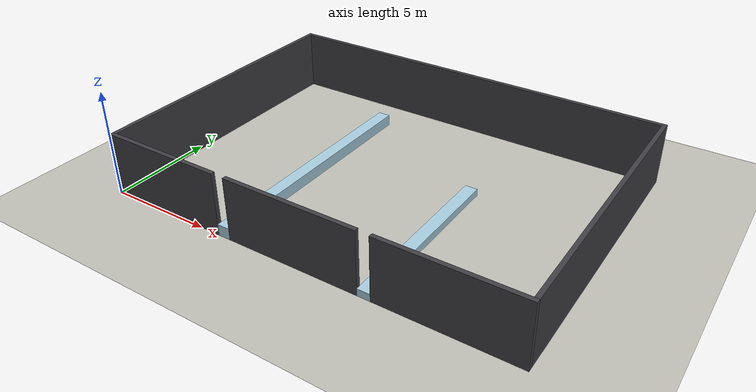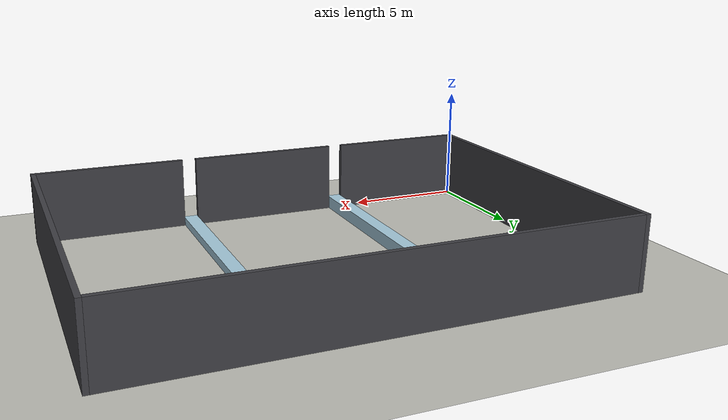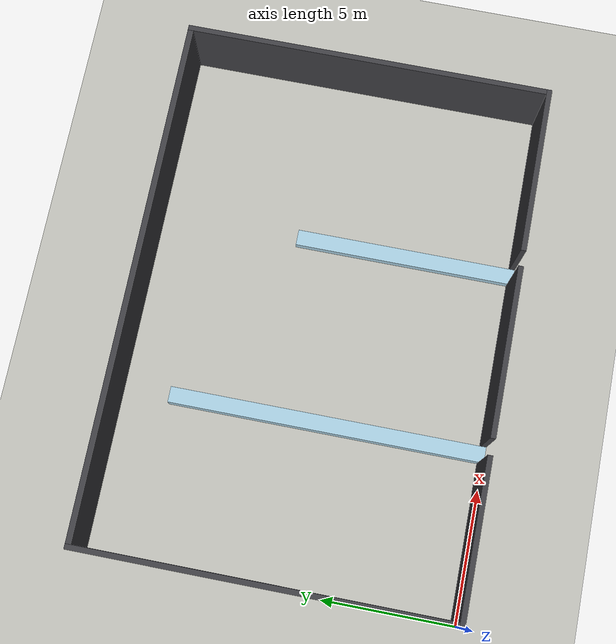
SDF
<?xml version="1.0" ?>
<!-- 자동 생성 파일 — 직접 수정하지 말 것.
     생성: python3 benchmark/export_sdf.py
     원본: benchmark/envs/heightmap.py 의 easy_open
     벽 2개(h=0.55/0.35), 우회 12m/8.4m — 넘기 vs 돌기 선택 -->
<sdf version="1.9">
  <world name="easy_open">

    <physics name="1ms" type="ignored">
      <max_step_size>0.001</max_step_size>
      <real_time_factor>1.0</real_time_factor>
    </physics>

    <plugin filename="gz-sim-physics-system" name="gz::sim::systems::Physics">
    </plugin>
    <plugin filename="gz-sim-user-commands-system" name="gz::sim::systems::UserCommands">
    </plugin>
    <plugin filename="gz-sim-scene-broadcaster-system" name="gz::sim::systems::SceneBroadcaster">
    </plugin>
    <plugin filename="gz-sim-contact-system" name="gz::sim::systems::Contact">
    </plugin>
    <plugin filename="gz-sim-imu-system" name="gz::sim::systems::Imu">
    </plugin>
    <plugin filename="gz-sim-sensors-system" name="gz::sim::systems::Sensors">
      <render_engine>ogre</render_engine>
    </plugin>

    <light type="directional" name="sun">
      <cast_shadows>true</cast_shadows>
      <pose>0 0 10 0 0 0</pose>
      <diffuse>0.8 0.8 0.8 1</diffuse>
      <specular>0.2 0.2 0.2 1</specular>
      <direction>-0.5 0.1 -0.9</direction>
    </light>

    <model name="ground_plane">
      <static>true</static>
      <link name="link">
        <collision name="collision">
          <geometry><plane>
            <normal>0 0 1</normal>
            <size>30.0 24.0</size>
          </plane></geometry>
        </collision>
        <visual name="visual">
          <geometry><plane>
            <normal>0 0 1</normal>
            <size>30.0 24.0</size>
          </plane></geometry>
          <material>
            <ambient>0.75 0.75 0.72 1</ambient>
            <diffuse>0.75 0.75 0.72 1</diffuse>
          </material>
        </visual>
      </link>
    </model>

    <model name="obs_0001_h035">
      <static>true</static>
      <pose>13.300 4.250 0.175 0 0 0</pose>
      <link name="link">
        <collision name="collision">
          <geometry><box><size>0.600 8.500 0.350</size></box></geometry>
        </collision>
        <visual name="visual">
          <geometry><box><size>0.600 8.500 0.350</size></box></geometry>
          <material>
            <ambient>0.66 0.81 0.88 1</ambient>
            <diffuse>0.66 0.81 0.88 1</diffuse>
          </material>
        </visual>
      </link>
    </model>
    <model name="obs_0002_h055">
      <static>true</static>
      <pose>6.300 6.000 0.275 0 0 0</pose>
      <link name="link">
        <collision name="collision">
          <geometry><box><size>0.600 12.000 0.550</size></box></geometry>
        </collision>
        <visual name="visual">
          <geometry><box><size>0.600 12.000 0.550</size></box></geometry>
          <material>
            <ambient>0.66 0.81 0.88 1</ambient>
            <diffuse>0.66 0.81 0.88 1</diffuse>
          </material>
        </visual>
      </link>
    </model>
    <model name="obs_0003_h300">
      <static>true</static>
      <pose>3.000 0.100 1.500 0 0 0</pose>
      <link name="link">
        <collision name="collision">
          <geometry><box><size>6.000 0.200 3.000</size></box></geometry>
        </collision>
        <visual name="visual">
          <geometry><box><size>6.000 0.200 3.000</size></box></geometry>
          <material>
            <ambient>0.25 0.25 0.27 1</ambient>
            <diffuse>0.25 0.25 0.27 1</diffuse>
          </material>
        </visual>
      </link>
    </model>
    <model name="obs_0004_h300">
      <static>true</static>
      <pose>9.800 0.100 1.500 0 0 0</pose>
      <link name="link">
        <collision name="collision">
          <geometry><box><size>6.400 0.200 3.000</size></box></geometry>
        </collision>
        <visual name="visual">
          <geometry><box><size>6.400 0.200 3.000</size></box></geometry>
          <material>
            <ambient>0.25 0.25 0.27 1</ambient>
            <diffuse>0.25 0.25 0.27 1</diffuse>
          </material>
        </visual>
      </link>
    </model>
    <model name="obs_0005_h300">
      <static>true</static>
      <pose>16.800 0.100 1.500 0 0 0</pose>
      <link name="link">
        <collision name="collision">
          <geometry><box><size>6.400 0.200 3.000</size></box></geometry>
        </collision>
        <visual name="visual">
          <geometry><box><size>6.400 0.200 3.000</size></box></geometry>
          <material>
            <ambient>0.25 0.25 0.27 1</ambient>
            <diffuse>0.25 0.25 0.27 1</diffuse>
          </material>
        </visual>
      </link>
    </model>
    <model name="obs_0006_h300">
      <static>true</static>
      <pose>0.100 7.100 1.500 0 0 0</pose>
      <link name="link">
        <collision name="collision">
          <geometry><box><size>0.200 13.800 3.000</size></box></geometry>
        </collision>
        <visual name="visual">
          <geometry><box><size>0.200 13.800 3.000</size></box></geometry>
          <material>
            <ambient>0.25 0.25 0.27 1</ambient>
            <diffuse>0.25 0.25 0.27 1</diffuse>
          </material>
        </visual>
      </link>
    </model>
    <model name="obs_0007_h300">
      <static>true</static>
      <pose>19.900 7.100 1.500 0 0 0</pose>
      <link name="link">
        <collision name="collision">
          <geometry><box><size>0.200 13.800 3.000</size></box></geometry>
        </collision>
        <visual name="visual">
          <geometry><box><size>0.200 13.800 3.000</size></box></geometry>
          <material>
            <ambient>0.25 0.25 0.27 1</ambient>
            <diffuse>0.25 0.25 0.27 1</diffuse>
          </material>
        </visual>
      </link>
    </model>
    <model name="obs_0008_h300">
      <static>true</static>
      <pose>10.000 13.900 1.500 0 0 0</pose>
      <link name="link">
        <collision name="collision">
          <geometry><box><size>19.600 0.200 3.000</size></box></geometry>
        </collision>
        <visual name="visual">
          <geometry><box><size>19.600 0.200 3.000</size></box></geometry>
          <material>
            <ambient>0.25 0.25 0.27 1</ambient>
            <diffuse>0.25 0.25 0.27 1</diffuse>
          </material>
        </visual>
      </link>
    </model>

  </world>
</sdf>
